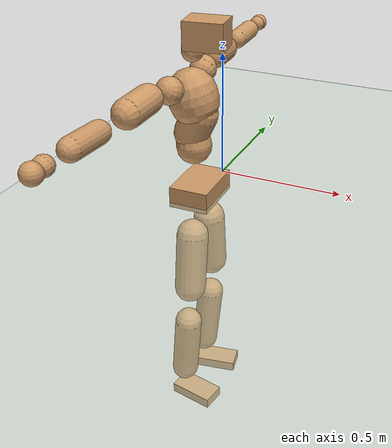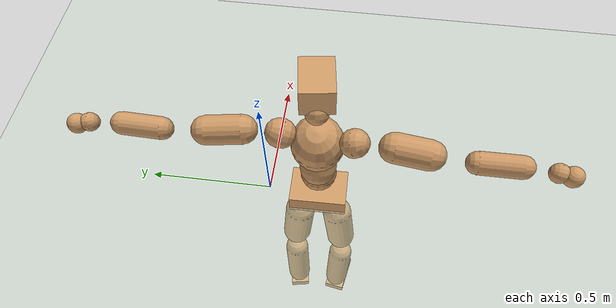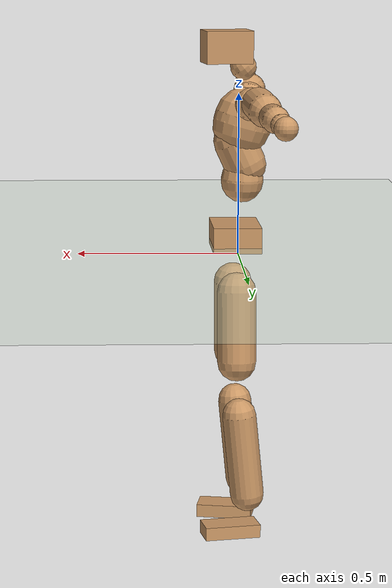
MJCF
<mujoco model="humanoid">
  <compiler coordinate="local" angle="radian"/>
  <default>
    <joint damping="0.0" armature="0.01" stiffness="0.0" limited="true"/>
    <geom conaffinity="1" condim="3" contype="7" margin="0.001" rgba="0.8 0.6 .4 1"/>
  </default>
  <asset>
    <texture type="skybox" builtin="gradient" rgb1=".4 .5 .6" rgb2="0 0 0" width="100" height="100"/>
    <texture builtin="flat" height="1278" mark="cross" markrgb="1 1 1" name="texgeom" random="0.01" rgb1="0.8 0.6 0.4" rgb2="0.8 0.6 0.4" type="cube" width="127"/>
    <texture builtin="checker" height="100" name="texplane" rgb1="0 0 0" rgb2="0.8 0.8 0.8" type="2d" width="100"/>
    <material name="MatPlane" reflectance="0.5" shininess="1" specular="1" texrepeat="60 60" texture="texplane"/>
    <material name="geom" texture="texgeom" texuniform="true"/>
  </asset>
  <worldbody>
    <light cutoff="100" diffuse="1 1 1" dir="-0 0 -1.3" directional="true" exponent="1" pos="0 0 1.3" specular=".1 .1 .1"/>
    <geom conaffinity="1" condim="3" name="floor" pos="0 0 0" rgba="0.8 0.9 0.8 1" size="100 100 .2" type="plane" material="MatPlane"/>
    <body name="Pelvis" pos="0.0015 -0.2041 0.0339">
      <freejoint name="Pelvis"/>
      <geom type="box" contype="1" conaffinity="1" density="5359.37559" pos="-0.0059 -0.0001 -0.0123" size="0.0769 0.1134 0.0412" quat="1.0000 0.0000 0.0000 0.0090" name="Pelvis"/>
      <body name="L_Hip" pos="-0.0069 0.0721 -0.09">
        <joint name="L_Hip_x" type="hinge" pos="0 0 0" axis="1 0 0" stiffness="1600" damping="160" armature="0.02" range="-180.0000 180.0000"/>
        <joint name="L_Hip_y" type="hinge" pos="0 0 0" axis="0 1 0" stiffness="1600" damping="160" armature="0.02" range="-180.0000 180.0000"/>
        <joint name="L_Hip_z" type="hinge" pos="0 0 0" axis="0 0 1" stiffness="1600" damping="160" armature="0.02" range="-180.0000 180.0000"/>
        <geom type="capsule" contype="1" conaffinity="1" density="2040.816327" size="0.063" fromto="-0.0003 0.0090 -0.0925 -0.0011 0.0309 -0.3185" name="L_Hip"/>
        <body name="L_Knee" pos="-0.0014 0.0398 -0.411">
          <joint name="L_Knee_x" type="hinge" pos="0 0 0" axis="1 0 0" stiffness="1600" damping="160" armature="0.02" range="-180.0000 180.0000"/>
          <joint name="L_Knee_y" type="hinge" pos="0 0 0" axis="0 1 0" stiffness="1600" damping="160" armature="0.02" range="-180.0000 180.0000"/>
          <joint name="L_Knee_z" type="hinge" pos="0 0 0" axis="0 0 1" stiffness="1600" damping="160" armature="0.02" range="-180.0000 180.0000"/>
          <geom type="capsule" contype="1" conaffinity="1" density="1234.567901" size="0.0547" fromto="-0.0087 -0.0025 -0.0842 -0.0364 -0.0104 -0.3536" name="L_Knee"/>
          <body name="L_Ankle" pos="-0.0451 -0.0129 -0.4378">
            <joint name="L_Ankle_x" type="hinge" pos="0 0 0" axis="1 0 0" stiffness="1600" damping="160" armature="0.02" range="-180.0000 180.0000"/>
            <joint name="L_Ankle_y" type="hinge" pos="0 0 0" axis="0 1 0" stiffness="1600" damping="160" armature="0.02" range="-180.0000 180.0000"/>
            <joint name="L_Ankle_z" type="hinge" pos="0 0 0" axis="0 0 1" stiffness="1600" damping="160" armature="0.02" range="-180.0000 180.0000"/>
            <geom type="box" contype="1" conaffinity="1" density="999.999983" pos="0.0634 0.0116 -0.0308" size="0.0907 0.0463 0.0213" quat="0.9959 0.0000 0.0000 0.0902" name="L_Ankle"/>
            <body name="L_Toe" pos="0.1267 0.0231 -0.0616">
              <joint name="L_Toe_x" type="hinge" pos="0 0 0" axis="1 0 0" stiffness="1000" damping="100" armature="0.02" range="-180.0000 180.0000"/>
              <joint name="L_Toe_y" type="hinge" pos="0 0 0" axis="0 1 0" stiffness="1000" damping="100" armature="0.02" range="-180.0000 180.0000"/>
              <joint name="L_Toe_z" type="hinge" pos="0 0 0" axis="0 0 1" stiffness="1000" damping="100" armature="0.02" range="-180.0000 180.0000"/>
              <geom type="box" contype="1" conaffinity="1" density="9234796.229623" pos="0.0000 0.0000 0.0310" size="0.0009 0.0023 0.0011" quat="0.9954 0.0000 0.0000 0.0963" name="L_Toe"/>
            </body>
          </body>
        </body>
      </body>
      <body name="R_Hip" pos="-0.0036 -0.0694 -0.0883">
        <joint name="R_Hip_x" type="hinge" pos="0 0 0" axis="1 0 0" stiffness="1600" damping="160" armature="0.02" range="-180.0000 180.0000"/>
        <joint name="R_Hip_y" type="hinge" pos="0 0 0" axis="0 1 0" stiffness="1600" damping="160" armature="0.02" range="-180.0000 180.0000"/>
        <joint name="R_Hip_z" type="hinge" pos="0 0 0" axis="0 0 1" stiffness="1600" damping="160" armature="0.02" range="-180.0000 180.0000"/>
        <geom type="capsule" contype="1" conaffinity="1" density="2040.816327" size="0.0621" fromto="-0.0009 -0.0099 -0.0915 -0.0032 -0.0355 -0.3274" name="R_Hip"/>
        <body name="R_Knee" pos="-0.0042 -0.0454 -0.419">
          <joint name="R_Knee_x" type="hinge" pos="0 0 0" axis="1 0 0" stiffness="1600" damping="160" armature="0.02" range="-180.0000 180.0000"/>
          <joint name="R_Knee_y" type="hinge" pos="0 0 0" axis="0 1 0" stiffness="1600" damping="160" armature="0.02" range="-180.0000 180.0000"/>
          <joint name="R_Knee_z" type="hinge" pos="0 0 0" axis="0 0 1" stiffness="1600" damping="160" armature="0.02" range="-180.0000 180.0000"/>
          <geom type="capsule" contype="1" conaffinity="1" density="1234.567901" size="0.0551" fromto="-0.0084 0.0031 -0.0847 -0.0352 0.0127 -0.3533" name="R_Knee"/>
          <body name="R_Ankle" pos="-0.0436 0.0158 -0.438">
            <joint name="R_Ankle_x" type="hinge" pos="0 0 0" axis="1 0 0" stiffness="1600" damping="160" armature="0.02" range="-180.0000 180.0000"/>
            <joint name="R_Ankle_y" type="hinge" pos="0 0 0" axis="0 1 0" stiffness="1600" damping="160" armature="0.02" range="-180.0000 180.0000"/>
            <joint name="R_Ankle_z" type="hinge" pos="0 0 0" axis="0 0 1" stiffness="1600" damping="160" armature="0.02" range="-180.0000 180.0000"/>
            <geom type="box" contype="1" conaffinity="1" density="999.999985" pos="0.0650 -0.0115 -0.0256" size="0.0914 0.0479 0.0211" quat="0.9962 0.0000 0.0000 -0.0876" name="R_Ankle"/>
            <body name="R_Toe" pos="0.13 -0.023 -0.0511">
              <joint name="R_Toe_x" type="hinge" pos="0 0 0" axis="1 0 0" stiffness="1000" damping="100" armature="0.02" range="-180.0000 180.0000"/>
              <joint name="R_Toe_y" type="hinge" pos="0 0 0" axis="0 1 0" stiffness="1000" damping="100" armature="0.02" range="-180.0000 180.0000"/>
              <joint name="R_Toe_z" type="hinge" pos="0 0 0" axis="0 0 1" stiffness="1000" damping="100" armature="0.02" range="-180.0000 180.0000"/>
              <geom type="box" contype="1" conaffinity="1" density="8848567.78641" pos="0.0000 0.0000 0.0284" size="0.0008 0.0024 0.0012" quat="0.9969 0.0000 0.0000 -0.0790" name="R_Toe"/>
            </body>
          </body>
        </body>
      </body>
      <body name="Torso" pos="-0.025 -0.0034 0.1043">
        <joint name="Torso_x" type="hinge" pos="0 0 0" axis="1 0 0" stiffness="2000" damping="200" armature="0.02" range="-180.0000 180.0000"/>
        <joint name="Torso_y" type="hinge" pos="0 0 0" axis="0 1 0" stiffness="2000" damping="200" armature="0.02" range="-180.0000 180.0000"/>
        <joint name="Torso_z" type="hinge" pos="0 0 0" axis="0 0 1" stiffness="2000" damping="200" armature="0.02" range="-180.0000 180.0000"/>
        <geom type="capsule" contype="1" conaffinity="1" density="2040.816327" size="0.0683" fromto="-0.0027 0.0016 0.0683 -0.0024 0.0014 0.0602" name="Torso"/>
        <body name="Spine" pos="-0.0052 0.0031 0.1285">
          <joint name="Spine_x" type="hinge" pos="0 0 0" axis="1 0 0" stiffness="2000" damping="200" armature="0.02" range="-180.0000 180.0000"/>
          <joint name="Spine_y" type="hinge" pos="0 0 0" axis="0 1 0" stiffness="2000" damping="200" armature="0.02" range="-180.0000 180.0000"/>
          <joint name="Spine_z" type="hinge" pos="0 0 0" axis="0 0 1" stiffness="2000" damping="200" armature="0.02" range="-180.0000 180.0000"/>
          <geom type="capsule" contype="1" conaffinity="1" density="2040.816327" size="0.0684" fromto="0.0286 0.0025 0.0621 -0.0062 -0.0006 -0.0135" name="Spine"/>
          <body name="Chest" pos="0.0224 0.002 0.0486">
            <joint name="Chest_x" type="hinge" pos="0 0 0" axis="1 0 0" stiffness="2000" damping="200" armature="0.02" range="-180.0000 180.0000"/>
            <joint name="Chest_y" type="hinge" pos="0 0 0" axis="0 1 0" stiffness="2000" damping="200" armature="0.02" range="-180.0000 180.0000"/>
            <joint name="Chest_z" type="hinge" pos="0 0 0" axis="0 0 1" stiffness="2000" damping="200" armature="0.02" range="-180.0000 180.0000"/>
            <geom type="capsule" contype="1" conaffinity="1" density="2040.816327" size="0.0946" fromto="-0.0250 -0.0005 0.0912 -0.0172 -0.0003 0.0627" name="Chest"/>
            <body name="Neck" pos="-0.0463 -0.0008 0.2191">
              <joint name="Neck_x" type="hinge" pos="0 0 0" axis="1 0 0" stiffness="1000" damping="100" armature="0.02" range="-180.0000 180.0000"/>
              <joint name="Neck_y" type="hinge" pos="0 0 0" axis="0 1 0" stiffness="1000" damping="100" armature="0.02" range="-180.0000 180.0000"/>
              <joint name="Neck_z" type="hinge" pos="0 0 0" axis="0 0 1" stiffness="1000" damping="100" armature="0.02" range="-180.0000 180.0000"/>
              <geom type="capsule" contype="1" conaffinity="1" density="1000" size="0.0416" fromto="0.0254 0.0028 0.0307 0.0267 0.0030 0.0323" name="Neck"/>
              <body name="Head" pos="0.0522 0.0058 0.063">
                <joint name="Head_x" type="hinge" pos="0 0 0" axis="1 0 0" stiffness="1000" damping="100" armature="0.02" range="-180.0000 180.0000"/>
                <joint name="Head_y" type="hinge" pos="0 0 0" axis="0 1 0" stiffness="1000" damping="100" armature="0.02" range="-180.0000 180.0000"/>
                <joint name="Head_z" type="hinge" pos="0 0 0" axis="0 0 1" stiffness="1000" damping="100" armature="0.02" range="-180.0000 180.0000"/>
                <geom type="box" contype="1" conaffinity="1" density="2249.999874" pos="0.0271 0.0039 0.0325" size="0.0746 0.0585 0.0515" quat="0.9974 0.0000 0.0000 0.0715" name="Head"/>
              </body>
            </body>
            <body name="L_Thorax" pos="-0.037 0.0784 0.1231">
              <joint name="L_Thorax_x" type="hinge" pos="0 0 0" axis="1 0 0" stiffness="1000" damping="100" armature="0.02" range="-180.0000 180.0000"/>
              <joint name="L_Thorax_y" type="hinge" pos="0 0 0" axis="0 1 0" stiffness="1000" damping="100" armature="0.02" range="-180.0000 180.0000"/>
              <joint name="L_Thorax_z" type="hinge" pos="0 0 0" axis="0 0 1" stiffness="1000" damping="100" armature="0.02" range="-180.0000 180.0000"/>
              <geom type="capsule" contype="1" conaffinity="1" density="1000" size="0.0519" fromto="-0.0020 0.0474 0.0210 -0.0018 0.0427 0.0189" name="L_Thorax"/>
              <body name="L_Shoulder" pos="-0.0038 0.0901 0.0399">
                <joint name="L_Shoulder_x" type="hinge" pos="0 0 0" axis="1 0 0" stiffness="1000" damping="100" armature="0.02" range="-720.0000 720.0000"/>
                <joint name="L_Shoulder_y" type="hinge" pos="0 0 0" axis="0 1 0" stiffness="1000" damping="100" armature="0.02" range="-720.0000 720.0000"/>
                <joint name="L_Shoulder_z" type="hinge" pos="0 0 0" axis="0 0 1" stiffness="1000" damping="100" armature="0.02" range="-720.0000 720.0000"/>
                <geom type="capsule" contype="1" conaffinity="1" density="1000" size="0.051" fromto="-0.0082 0.0804 -0.0060 -0.0208 0.2042 -0.0153" name="L_Shoulder"/>
                <body name="L_Elbow" pos="-0.029 0.2846 -0.0213">
                  <joint name="L_Elbow_x" type="hinge" pos="0 0 0" axis="1 0 0" stiffness="1000" damping="100" armature="0.02" range="-720.0000 720.0000"/>
                  <joint name="L_Elbow_y" type="hinge" pos="0 0 0" axis="0 1 0" stiffness="1000" damping="100" armature="0.02" range="-720.0000 720.0000"/>
                  <joint name="L_Elbow_z" type="hinge" pos="0 0 0" axis="0 0 1" stiffness="1000" damping="100" armature="0.02" range="-720.0000 720.0000"/>
                  <geom type="capsule" contype="1" conaffinity="1" density="1000" size="0.0393" fromto="0.0001 0.0693 0.0031 0.0003 0.2049 0.0092" name="L_Elbow"/>
                  <body name="L_Wrist" pos="0.0005 0.2741 0.0124">
                    <joint name="L_Wrist_x" type="hinge" pos="0 0 0" axis="1 0 0" stiffness="600" damping="60" armature="0.02" range="-180.0000 180.0000"/>
                    <joint name="L_Wrist_y" type="hinge" pos="0 0 0" axis="0 1 0" stiffness="600" damping="60" armature="0.02" range="-180.0000 180.0000"/>
                    <joint name="L_Wrist_z" type="hinge" pos="0 0 0" axis="0 0 1" stiffness="600" damping="60" armature="0.02" range="-180.0000 180.0000"/>
                    <geom type="capsule" contype="1" conaffinity="1" density="1000" size="0.032" fromto="-0.0071 0.0422 -0.0053 -0.0075 0.0442 -0.0055" name="L_Wrist"/>
                    <body name="L_Hand" pos="-0.0146 0.0864 -0.0108">
                      <joint name="L_Hand_x" type="hinge" pos="0 0 0" axis="1 0 0" stiffness="600" damping="60" armature="0.02" range="-180.0000 180.0000"/>
                      <joint name="L_Hand_y" type="hinge" pos="0 0 0" axis="0 1 0" stiffness="600" damping="60" armature="0.02" range="-180.0000 180.0000"/>
                      <joint name="L_Hand_z" type="hinge" pos="0 0 0" axis="0 0 1" stiffness="600" damping="60" armature="0.02" range="-180.0000 180.0000"/>
                      <geom type="sphere" contype="1" conaffinity="1" density="1000" size="0.0346" pos="0.0000 0.0000 0.0000" name="L_Hand"/>
                    </body>
                  </body>
                </body>
              </body>
            </body>
            <body name="R_Thorax" pos="-0.0435 -0.0802 0.1197">
              <joint name="R_Thorax_x" type="hinge" pos="0 0 0" axis="1 0 0" stiffness="1000" damping="100" armature="0.02" range="-180.0000 180.0000"/>
              <joint name="R_Thorax_y" type="hinge" pos="0 0 0" axis="0 1 0" stiffness="1000" damping="100" armature="0.02" range="-180.0000 180.0000"/>
              <joint name="R_Thorax_z" type="hinge" pos="0 0 0" axis="0 0 1" stiffness="1000" damping="100" armature="0.02" range="-180.0000 180.0000"/>
              <geom type="capsule" contype="1" conaffinity="1" density="1000" size="0.0511" fromto="-0.0046 -0.0473 0.0198 -0.0048 -0.0492 0.0206" name="R_Thorax"/>
              <body name="R_Shoulder" pos="-0.0094 -0.0965 0.0404">
                <joint name="R_Shoulder_x" type="hinge" pos="0 0 0" axis="1 0 0" stiffness="1000" damping="100" armature="0.02" range="-720.0000 720.0000"/>
                <joint name="R_Shoulder_y" type="hinge" pos="0 0 0" axis="0 1 0" stiffness="1000" damping="100" armature="0.02" range="-720.0000 720.0000"/>
                <joint name="R_Shoulder_z" type="hinge" pos="0 0 0" axis="0 0 1" stiffness="1000" damping="100" armature="0.02" range="-720.0000 720.0000"/>
                <geom type="capsule" contype="1" conaffinity="1" density="1000" size="0.0527" fromto="-0.0063 -0.0822 -0.0060 -0.0156 -0.2028 -0.0148" name="R_Shoulder"/>
                <body name="R_Elbow" pos="-0.0219 -0.2851 -0.0208">
                  <joint name="R_Elbow_x" type="hinge" pos="0 0 0" axis="1 0 0" stiffness="1000" damping="100" armature="0.02" range="-720.0000 720.0000"/>
                  <joint name="R_Elbow_y" type="hinge" pos="0 0 0" axis="0 1 0" stiffness="1000" damping="100" armature="0.02" range="-720.0000 720.0000"/>
                  <joint name="R_Elbow_z" type="hinge" pos="0 0 0" axis="0 0 1" stiffness="1000" damping="100" armature="0.02" range="-720.0000 720.0000"/>
                  <geom type="capsule" contype="1" conaffinity="1" density="1000" size="0.0396" fromto="-0.0012 -0.0695 0.0024 -0.0037 -0.2147 0.0073" name="R_Elbow"/>
                  <body name="R_Wrist" pos="-0.0049 -0.2843 0.0097">
                    <joint name="R_Wrist_x" type="hinge" pos="0 0 0" axis="1 0 0" stiffness="600" damping="60" armature="0.02" range="-180.0000 180.0000"/>
                    <joint name="R_Wrist_y" type="hinge" pos="0 0 0" axis="0 1 0" stiffness="600" damping="60" armature="0.02" range="-180.0000 180.0000"/>
                    <joint name="R_Wrist_z" type="hinge" pos="0 0 0" axis="0 0 1" stiffness="600" damping="60" armature="0.02" range="-180.0000 180.0000"/>
                    <geom type="capsule" contype="1" conaffinity="1" density="1000" size="0.0333" fromto="-0.0057 -0.0437 -0.0040 -0.0060 -0.0457 -0.0042" name="R_Wrist"/>
                    <body name="R_Hand" pos="-0.0117 -0.0894 -0.0081">
                      <joint name="R_Hand_x" type="hinge" pos="0 0 0" axis="1 0 0" stiffness="600" damping="60" armature="0.02" range="-180.0000 180.0000"/>
                      <joint name="R_Hand_y" type="hinge" pos="0 0 0" axis="0 1 0" stiffness="600" damping="60" armature="0.02" range="-180.0000 180.0000"/>
                      <joint name="R_Hand_z" type="hinge" pos="0 0 0" axis="0 0 1" stiffness="600" damping="60" armature="0.02" range="-180.0000 180.0000"/>
                      <geom type="sphere" contype="1" conaffinity="1" density="1000" size="0.0355" pos="0.0000 0.0000 0.0000" name="R_Hand"/>
                    </body>
                  </body>
                </body>
              </body>
            </body>
          </body>
        </body>
      </body>
    </body>
  </worldbody>
  <actuator>
    <motor name="L_Hip_x" joint="L_Hip_x" gear="500"/>
    <motor name="L_Hip_y" joint="L_Hip_y" gear="500"/>
    <motor name="L_Hip_z" joint="L_Hip_z" gear="500"/>
    <motor name="L_Knee_x" joint="L_Knee_x" gear="500"/>
    <motor name="L_Knee_y" joint="L_Knee_y" gear="500"/>
    <motor name="L_Knee_z" joint="L_Knee_z" gear="500"/>
    <motor name="L_Ankle_x" joint="L_Ankle_x" gear="500"/>
    <motor name="L_Ankle_y" joint="L_Ankle_y" gear="500"/>
    <motor name="L_Ankle_z" joint="L_Ankle_z" gear="500"/>
    <motor name="L_Toe_x" joint="L_Toe_x" gear="500"/>
    <motor name="L_Toe_y" joint="L_Toe_y" gear="500"/>
    <motor name="L_Toe_z" joint="L_Toe_z" gear="500"/>
    <motor name="R_Hip_x" joint="R_Hip_x" gear="500"/>
    <motor name="R_Hip_y" joint="R_Hip_y" gear="500"/>
    <motor name="R_Hip_z" joint="R_Hip_z" gear="500"/>
    <motor name="R_Knee_x" joint="R_Knee_x" gear="500"/>
    <motor name="R_Knee_y" joint="R_Knee_y" gear="500"/>
    <motor name="R_Knee_z" joint="R_Knee_z" gear="500"/>
    <motor name="R_Ankle_x" joint="R_Ankle_x" gear="500"/>
    <motor name="R_Ankle_y" joint="R_Ankle_y" gear="500"/>
    <motor name="R_Ankle_z" joint="R_Ankle_z" gear="500"/>
    <motor name="R_Toe_x" joint="R_Toe_x" gear="500"/>
    <motor name="R_Toe_y" joint="R_Toe_y" gear="500"/>
    <motor name="R_Toe_z" joint="R_Toe_z" gear="500"/>
    <motor name="Torso_x" joint="Torso_x" gear="500"/>
    <motor name="Torso_y" joint="Torso_y" gear="500"/>
    <motor name="Torso_z" joint="Torso_z" gear="500"/>
    <motor name="Spine_x" joint="Spine_x" gear="500"/>
    <motor name="Spine_y" joint="Spine_y" gear="500"/>
    <motor name="Spine_z" joint="Spine_z" gear="500"/>
    <motor name="Chest_x" joint="Chest_x" gear="500"/>
    <motor name="Chest_y" joint="Chest_y" gear="500"/>
    <motor name="Chest_z" joint="Chest_z" gear="500"/>
    <motor name="Neck_x" joint="Neck_x" gear="500"/>
    <motor name="Neck_y" joint="Neck_y" gear="500"/>
    <motor name="Neck_z" joint="Neck_z" gear="500"/>
    <motor name="Head_x" joint="Head_x" gear="500"/>
    <motor name="Head_y" joint="Head_y" gear="500"/>
    <motor name="Head_z" joint="Head_z" gear="500"/>
    <motor name="L_Thorax_x" joint="L_Thorax_x" gear="500"/>
    <motor name="L_Thorax_y" joint="L_Thorax_y" gear="500"/>
    <motor name="L_Thorax_z" joint="L_Thorax_z" gear="500"/>
    <motor name="L_Shoulder_x" joint="L_Shoulder_x" gear="500"/>
    <motor name="L_Shoulder_y" joint="L_Shoulder_y" gear="500"/>
    <motor name="L_Shoulder_z" joint="L_Shoulder_z" gear="500"/>
    <motor name="L_Elbow_x" joint="L_Elbow_x" gear="500"/>
    <motor name="L_Elbow_y" joint="L_Elbow_y" gear="500"/>
    <motor name="L_Elbow_z" joint="L_Elbow_z" gear="500"/>
    <motor name="L_Wrist_x" joint="L_Wrist_x" gear="500"/>
    <motor name="L_Wrist_y" joint="L_Wrist_y" gear="500"/>
    <motor name="L_Wrist_z" joint="L_Wrist_z" gear="500"/>
    <motor name="L_Hand_x" joint="L_Hand_x" gear="500"/>
    <motor name="L_Hand_y" joint="L_Hand_y" gear="500"/>
    <motor name="L_Hand_z" joint="L_Hand_z" gear="500"/>
    <motor name="R_Thorax_x" joint="R_Thorax_x" gear="500"/>
    <motor name="R_Thorax_y" joint="R_Thorax_y" gear="500"/>
    <motor name="R_Thorax_z" joint="R_Thorax_z" gear="500"/>
    <motor name="R_Shoulder_x" joint="R_Shoulder_x" gear="500"/>
    <motor name="R_Shoulder_y" joint="R_Shoulder_y" gear="500"/>
    <motor name="R_Shoulder_z" joint="R_Shoulder_z" gear="500"/>
    <motor name="R_Elbow_x" joint="R_Elbow_x" gear="500"/>
    <motor name="R_Elbow_y" joint="R_Elbow_y" gear="500"/>
    <motor name="R_Elbow_z" joint="R_Elbow_z" gear="500"/>
    <motor name="R_Wrist_x" joint="R_Wrist_x" gear="500"/>
    <motor name="R_Wrist_y" joint="R_Wrist_y" gear="500"/>
    <motor name="R_Wrist_z" joint="R_Wrist_z" gear="500"/>
    <motor name="R_Hand_x" joint="R_Hand_x" gear="500"/>
    <motor name="R_Hand_y" joint="R_Hand_y" gear="500"/>
    <motor name="R_Hand_z" joint="R_Hand_z" gear="500"/>
  </actuator>
  <contact>
    <exclude body1="Torso" body2="Chest"/>
    <exclude body1="Head" body2="Chest"/>
    <exclude body1="R_Knee" body2="R_Toe"/>
    <exclude body1="R_Knee" body2="L_Ankle"/>
    <exclude body1="R_Knee" body2="L_Toe"/>
    <exclude body1="L_Knee" body2="L_Toe"/>
    <exclude body1="L_Knee" body2="R_Ankle"/>
    <exclude body1="L_Knee" body2="R_Toe"/>
    <exclude body1="L_Shoulder" body2="Chest"/>
    <exclude body1="R_Shoulder" body2="Chest"/>
  </contact>
  <sensor/>
  <size njmax="700" nconmax="700"/>
</mujoco>
